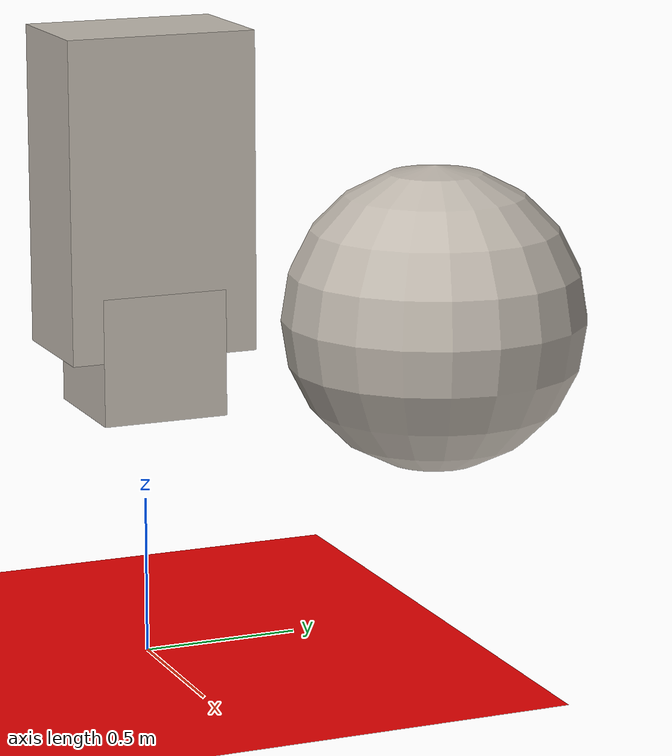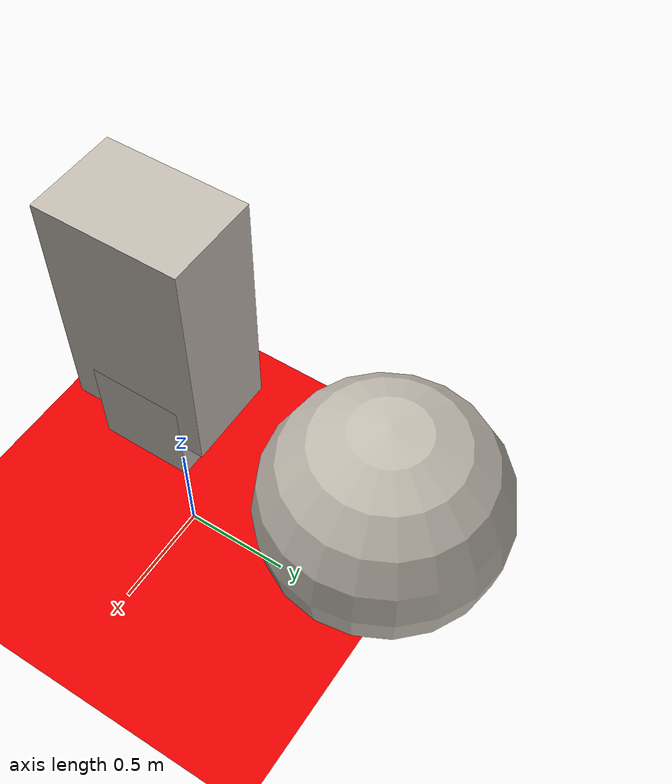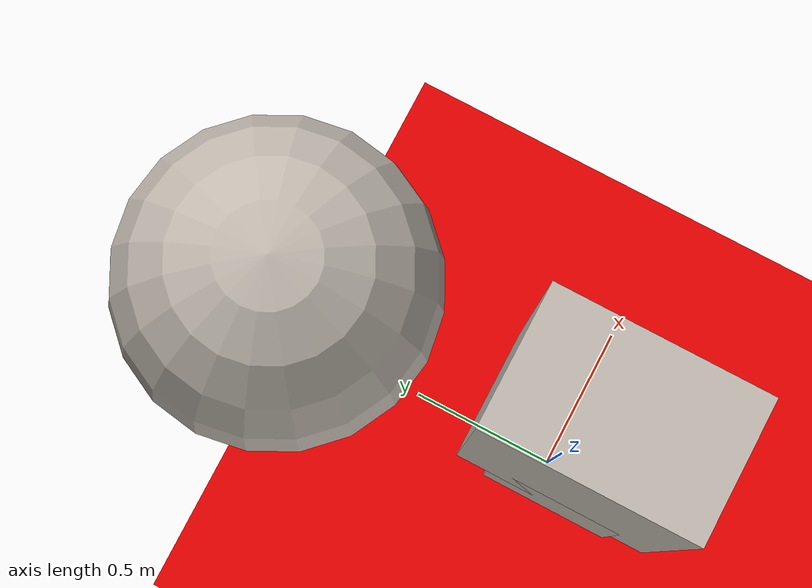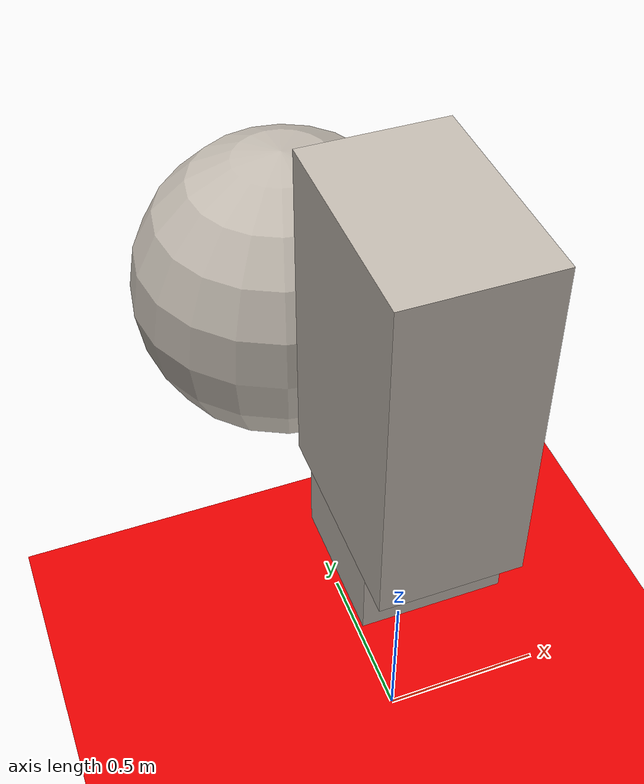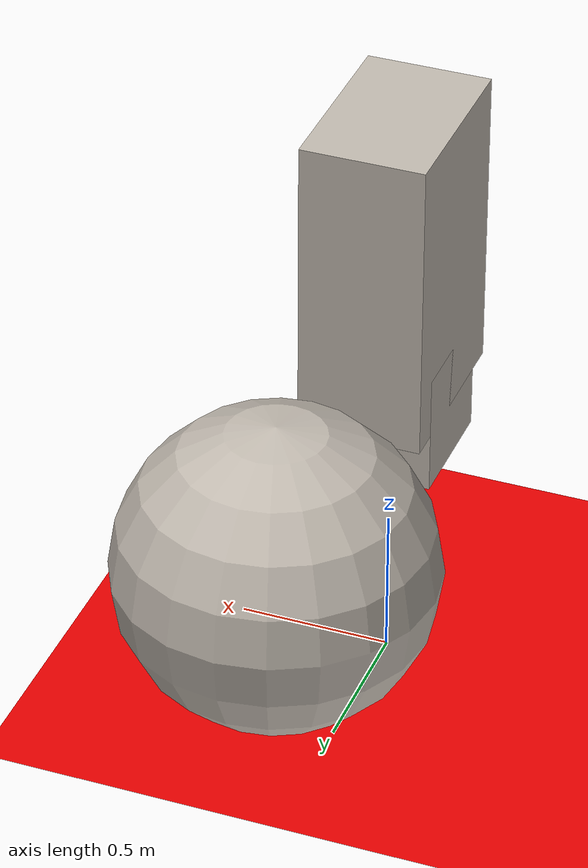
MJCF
<mujoco>
  <include file="../heroes/tung_tung_sahur/model.xml"/>
  <include file="../heroes/oleg/model.xml"/>
  <asset>
    <texture type="2d" name="target_texture" file="../heroes/round_tensor/texture.png"/>
    <material name="target_material" texture="target_texture"/>
  </asset>
  <worldbody>
    <body name="target" pos="0 1 1">
      <geom name="target_geom" type="sphere" size="0.5" material="target_material"/>
    </body>
  </worldbody>
</mujoco>

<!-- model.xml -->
<mujoco>
  <asset>
    <texture type="cube" name="hero_body_texture" file="/home/artalmaz31/tung_playground/heroes/tung_tung_sahur/body.png"/>
    <texture type="cube" name="hero_leg_texture" file="/home/artalmaz31/tung_playground/heroes/tung_tung_sahur/leg.png"/>
    <material name="hero_body_material" texture="hero_body_texture"/>
    <material name="hero_leg_material" texture="hero_leg_texture"/>
  </asset>
  <worldbody>
    <light diffuse=".5 .5 .5" pos="0 0 3" dir="0 0 -1"/>
    <geom type="plane" size="1 1 0.1" rgba=".9 0 0 1"/>
    <body name="torso" pos="0 0 1.5">
      <joint type="free"/>
      <geom type="box" size=".2 .3 .5" material="hero_body_material"/>
      <body name="leg1" pos="0 .15 .0">
        <joint type="hinge" axis="1 0 0" pos="0 0 -.4"/>
        <geom type="box" size=".1 .1 .3" material="hero_leg_material"/>
      </body>
      <body name="leg2" pos="0 -.15 .0">
        <joint type="hinge" axis="1 0 0" pos="0 0 -.4"/>
        <geom type="box" size=".1 .1 .3" material="hero_leg_material"/>
      </body>
    </body>
  </worldbody>
</mujoco>

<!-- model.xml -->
<mujoco>
  <asset>
    <texture type="cube" name="villain_texture" file="/home/artalmaz31/tung_playground/heroes/oleg/texture.png"/>
    <material name="villain_material" texture="villain_texture"/>
  </asset>
  <worldbody>
    <body name="villain" pos="0 0 1">
      <joint type="free"/>
      <geom type="box" size=".2 .2 .2" material="villain_material"/>
    </body>
  </worldbody>
</mujoco>
